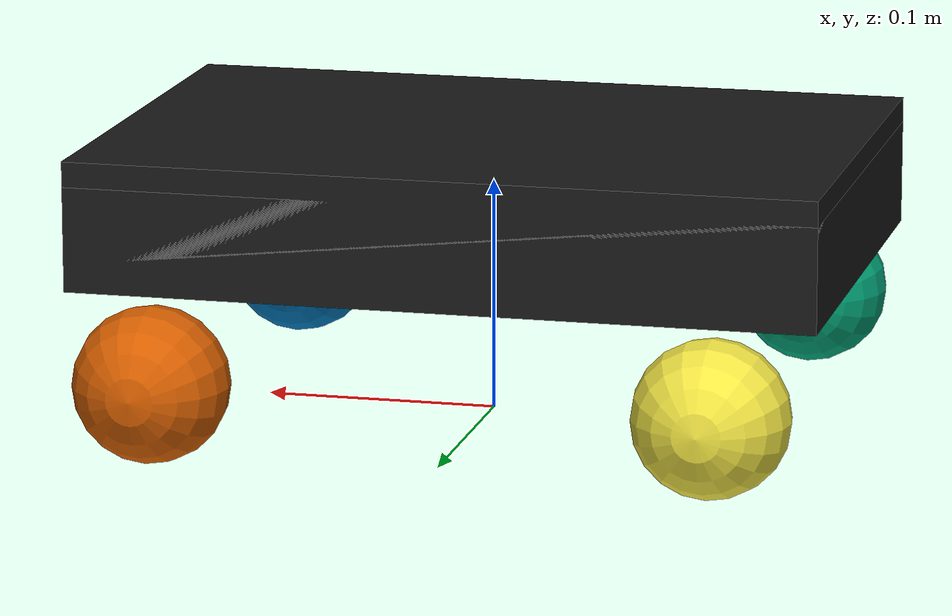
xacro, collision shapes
<?xml version="1.0"?>
<robot name="robitcubebot" xmlns:xacro="http://ros.org/wiki/xacro">
  <xacro:include filename="common_properties.xacro" />

  <link name="base_footprint"/>

  <!-- Define robot properties -->
  <xacro:property name="base_length" value="0.317" />
  <xacro:property name="base_width" value="0.212" />
  <xacro:property name="base_height" value="0.0446" />
  <xacro:property name="wheel_radius" value="0.0325" />
  <xacro:property name="wheel_length" value="0.025" />

  <link name="base_link">
    <xacro:box_inertia m="0.6" l="${2*base_length}" w="${2*base_width}" h="${2*base_height}"
                           xyz="0 0 ${base_height / 2.0}" rpy="0 0 0" />
    <visual>
      <origin xyz="-${base_length / 2.0} -${base_width / 2.0} 0" rpy="0 0 0" />
      <geometry>
        <mesh filename="package://robitcubebot_description/meshes/base_link.STL" scale="0.001 0.001 0.001" />

      </geometry>
      <material name="black">
          <color rgba="0.1 0.1 0.1 1" />
      </material>
    </visual>
    <collision>
      <origin xyz="0 0 0.1" rpy="0 0 0" />

      <geometry>
        <box size="${base_length} ${base_width} ${base_height}" />
      </geometry>
    </collision>
  </link>

  <!-- Define joints -->
  <joint name="base_joint" type="fixed">
    <parent link="base_footprint"/>
    <child link="base_link" />
    <origin xyz="0 0 0" rpy="0 0 0"/>
  </joint>

  <!-- Wheels -->

  <link name="front_wheel_right_link">
    <inertial>
      <origin xyz="0 -0.014 0" rpy="0 0 0" />
      <mass value="0.0530086090966721" />
      <inertia ixx="1.88176298336665E-05" ixy="-4.8444933029987E-10" ixz="1.88163708851143E-08"
               iyy="3.11510738647764E-05" iyz="-6.93560663069607E-11"
               izz="1.8801969558182E-05" />
    </inertial>
    <visual>
      <origin xyz="0 0 0" rpy="1.57 0 0" />
      <geometry>
        <mesh filename="package://robitcubebot_description/meshes/wheel_right_link.STL" />
      </geometry>
    </visual>
    <collision>
      <origin xyz="0 -0.015 0" rpy="1.57 0 0" />
      <geometry>
        <sphere radius="0.033"/>
      </geometry>
    </collision>
  </link>

  <joint name="front_wheel_right_joint" type="continuous">
    <origin xyz="-${base_width / 1.8} -${base_width / 2.1} ${wheel_radius}" rpy="0 0 0" />
    <parent link="base_link" />
    <child link="front_wheel_right_link" />
    <axis xyz="0 -1 0" />
  </joint>
  <link
    name="front_wheel_left_link">
    <inertial>
      <origin xyz="0 0.014 0" rpy="0 0 0" />
      <mass value="0.0530086043217644" />
      <inertia ixx="1.8792911368909E-05"  ixy="3.31256392204584E-10" ixz="-1.14082001662767E-08"
               iyy="3.11510738759073E-05" iyz="-3.60499245082192E-10"
               izz="1.88266886146847E-05" />
    </inertial>
    <visual>
      <origin xyz="0 0 0" rpy="-1.57 0 0" />
      <geometry>
        <mesh filename="package://robitcubebot_description/meshes/wheel_left_link.STL" />
      </geometry>
    </visual>
    <collision>
      <origin xyz="0 0.015 0" rpy="-1.57 0 0" />
      <geometry>
        <sphere radius="0.033"/>
      </geometry>
    </collision>
  </link>
  <joint name="front_wheel_left_joint" type="continuous">
    <origin xyz="-${base_width / 1.8} ${base_width / 2.1} ${wheel_radius}" rpy="0 0 0" />
    <parent link="base_link" />
    <child link="front_wheel_left_link" />
    <axis xyz="0 -1 0" />
  </joint>
  <link name="back_wheel_right_link">
    <inertial>
      <origin xyz="0 -0.014 0" rpy="0 0 0" />
      <mass value="0.0530086090966721" />
      <inertia ixx="1.88176298336665E-05" ixy="-4.8444933029987E-10" ixz="1.88163708851143E-08"
               iyy="3.11510738647764E-05" iyz="-6.93560663069607E-11"
               izz="1.8801969558182E-05" />
    </inertial>
    <visual>
      <origin xyz="0 0 0" rpy="1.57 0 0" />
      <geometry>
        <mesh filename="package://robitcubebot_description/meshes/wheel_right_link.STL" />
      </geometry>
    </visual>
    <collision>
      <origin xyz="0 -0.015 0" rpy="1.57 0 0" />
      <geometry>
        <sphere radius="0.033"/>
      </geometry>
    </collision>
  </link>

  <joint name="back_wheel_right_joint" type="continuous">
    <origin xyz="${base_width / 1.8} -${base_width / 2.1} ${wheel_radius}" rpy="0 0 0" />
    <parent link="base_link" />
    <child link="back_wheel_right_link" />
    <axis xyz="0 -1 0" />

  </joint>
  <link
    name="back_wheel_left_link">
    <inertial>
      <origin xyz="0 0.014 0" rpy="0 0 0" />
      <mass value="0.0530086043217644" />
      <inertia ixx="1.8792911368909E-05"  ixy="3.31256392204584E-10" ixz="-1.14082001662767E-08"
               iyy="3.11510738759073E-05" iyz="-3.60499245082192E-10"
               izz="1.88266886146847E-05" />
    </inertial>
    <visual>
      <origin xyz="0 0 0" rpy="-1.57 0 0" />
      <geometry>
        <mesh filename="package://robitcubebot_description/meshes/wheel_left_link.STL" />
      </geometry>
    </visual>
    <collision>
      <origin xyz="0 0.015 0" rpy="-1.57 0 0" />
      <geometry>
        <sphere radius="0.033"/>
      </geometry>
    </collision>
  </link>
  <joint name="back_wheel_left_joint" type="continuous">
    <origin xyz="${base_width / 1.8} ${base_width / 2.1} ${wheel_radius}" rpy="0 0 0" />
    <parent link="base_link" />
    <child link="back_wheel_left_link" />
    <axis xyz="0 -1 0" />

  </joint>

  <link name="upper_link">
    <xacro:box_inertia m="0.6" l="${2*base_length}" w="${2*base_width}" h="${2*base_height}"
                           xyz="0 0 ${base_height / 2.0}" rpy="0 0 0" />
    <visual>
      <origin xyz="-${base_length / 1.75} -0.165 0" rpy="0 0 0" />
      <geometry>
        <mesh filename="package://robitcubebot_description/meshes/upper_link.STL" scale="0.001 0.001 0.001" />

      </geometry>
      <material name="black">
        <color rgba="0.1 0.1 0.1 1" />
      </material>
    </visual>
    <collision>
      <origin xyz="0 0 ${base_height}" rpy="0 0 0" />
      <geometry>
        <box size="${base_length} ${base_width} ${base_height}" />
      </geometry>
    </collision>
  </link>

  <joint name="upper_joint" type="fixed">
    <parent link="base_link"/>
    <child link="upper_link" />
    <origin xyz="0 0 ${base_height}" rpy="0 0 0"/>
  </joint>

</robot>

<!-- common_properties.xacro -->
<robot xmlns:xacro="http://www.ros.org/wiki/xacro">

    <xacro:macro name="box_inertia" params="m l w h xyz rpy">
        <inertial>
            <origin xyz="${xyz}" rpy="${rpy}" />
            <mass value="${m}" />
            <inertia ixx="${(m/12) * (h*h + l*l)}" ixy="0" ixz="0"
                     iyy="${(m/12) * (w*w + l*l)}" iyz="0"
                     izz="${(m/12) * (w*w + h*h)}" />
        </inertial>
    </xacro:macro>

    <xacro:macro name="cylinder_inertia" params="m r h xyz rpy">
        <inertial>
            <origin xyz="${xyz}" rpy="${rpy}" />
            <mass value="${m}" />
            <inertia ixx="${(m/12) * (3*r*r + h*h)}" ixy="0" ixz="0"
                     iyy="${(m/12) * (3*r*r + h*h)}" iyz="0"
                     izz="${(m/2) * (r*r)}" />
        </inertial>
    </xacro:macro>

    <xacro:macro name="sphere_inertia" params="m r xyz rpy">
        <inertial>
            <origin xyz="${xyz}" rpy="${rpy}" />
            <mass value="${m}" />
            <inertia ixx="${(2/5) * m * r * r}" ixy="0" ixz="0"
                     iyy="${(2/5) * m * r * r}" iyz="0"
                     izz="${(2/5) * m * r * r}" />
        </inertial>
    </xacro:macro>

</robot>
